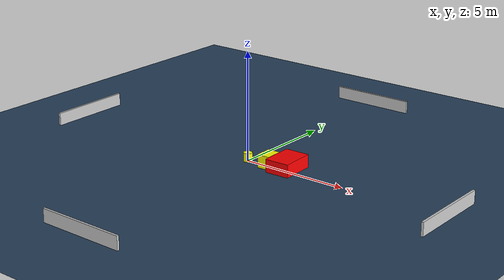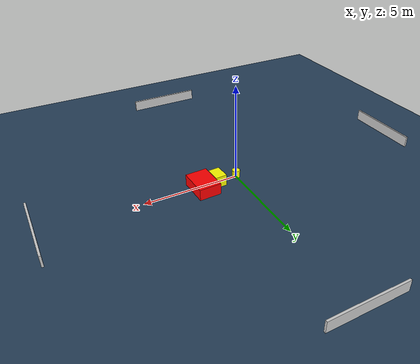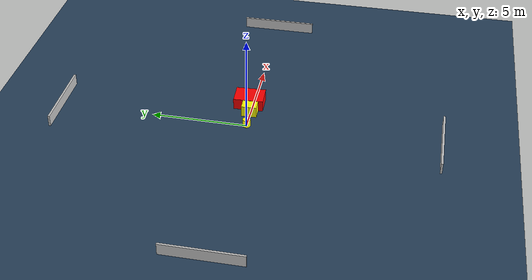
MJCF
<?xml version="1.0" ?>
<mujoco model="generated_environment">
  <option timestep="0.01" integrator="RK4" cone="elliptic"/>
  <default>
    <geom density="1"/>
  </default>
  <asset>
    <texture builtin="gradient" height="3072" name="skybox" rgb1="0.3 0.5 0.7" rgb2="0 0 0" type="skybox" width="512"/>
    <texture builtin="checker" height="300" name="groundplane" rgb1="0.2 0.3 0.4" rgb2="0.1 0.2 0.3" type="2d" width="300"/>
    <material name="groundplane" reflectance="0.2" texrepeat="5 5" texture="groundplane"/>
  </asset>
  <worldbody>
    <light dir="0 0 -1" directional="true" pos="0 0 1.5"/>
    <geom condim="3" friction="0.5 0.005 0.001" material="groundplane" name="floor" pos="0 0 0" size="0 0 0.05" type="plane"/>
    <body name="walls">
      <geom name="wall_1" condim="4" pos="-10.0 0.0 0.3" rgba="0.800000011920929 0.800000011920929 0.800000011920929 1.0" size="0.05 2.0 0.3" type="box"/>
      <geom name="wall_2" condim="4" pos="10.0 0.0 0.3" rgba="0.800000011920929 0.800000011920929 0.800000011920929 1.0" size="0.05 2.0 0.3" type="box"/>
      <geom name="wall_3" condim="4" pos="0.0 -10.0 0.3" rgba="0.800000011920929 0.800000011920929 0.800000011920929 1.0" size="2.0 0.05 0.3" type="box"/>
      <geom name="wall_4" condim="4" pos="0.0 10.0 0.3" rgba="0.800000011920929 0.800000011920929 0.800000011920929 1.0" size="2.0 0.05 0.3" type="box"/>
    </body>
    <body name="robot">
      <joint name="joint_x" type="slide" pos="0 0 0" axis="1 0 0"/>
      <joint name="joint_y" type="slide" pos="0 0 0" axis="0 1 0"/>
      <geom name="robot" type="cylinder" pos="0.0 0.0 0.2" size="0.2 0.2 0.0" mass="5.0" friction="1.0 0.005 0.0001" condim="4" rgba="1.0 1.0 0.0 1.0"/>
    </body>
    <body name="obstacle_1_movable">
      <geom name="obstacle_1_movable" condim="4" pos="1.0977993393173588 0.057308567089917245 0.3" euler="0 0 182.10061147042396" friction="0.0 0.005 0.001" rgba="1.0 1.0 0.0 1.0" size="0.29808833333772794 0.4033970897816417 0.3" type="box" mass="0.1"/>
      <joint type="free"/>
    </body>
    <body name="obstacle_2_static">
      <geom name="obstacle_2_static" condim="4" pos="1.9803569985075202 0.22481910310184025 0.3" euler="0 0 2.0929004030120657" friction="0.0 0.005 0.001" rgba="1.0 0.0 0.0 1.0" size="0.574128249675399 0.7847220003354827 0.3" type="box"/>
    </body>
  </worldbody>
  <actuator>
    <motor name="actuator_x" joint="joint_x" gear="1" ctrlrange="-1 1"/>
    <motor name="actuator_y" joint="joint_y" gear="1" ctrlrange="-1 1"/>
  </actuator>
</mujoco>
